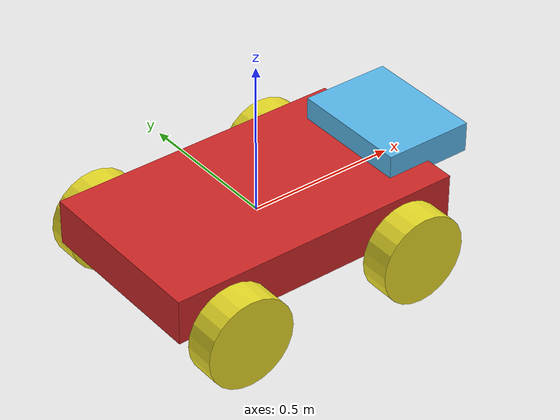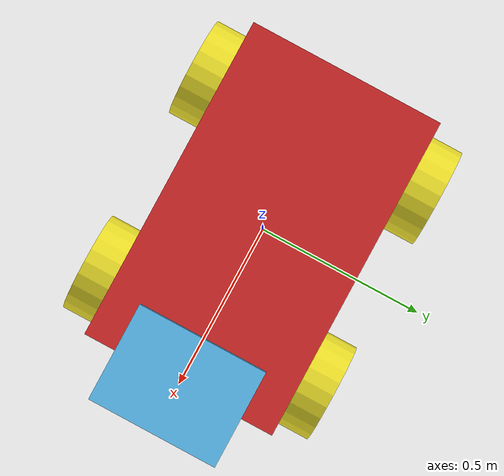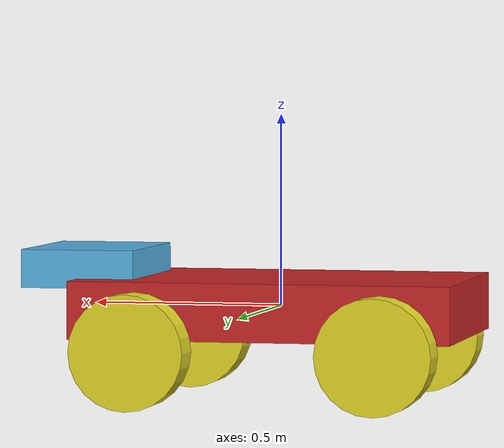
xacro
<?xml version="1.0"?>

<robot name="differential_drive_robot"
	xmlns:xacro="https://www.ros.org/wiki/xacro">

	<!-- base dimensions -->
	<xacro:property name="base_link_x_dim" value="1"/>
	<xacro:property name="base_link_y_dim" value="0.6"/>
	<xacro:property name="base_link_z_dim" value="0.3"/>

	<!-- Wheel dimensions -->
	<xacro:property name="wheel_link_radius" value="0.15"/>
	<xacro:property name="wheel_link_length" value="0.1"/>
	<xacro:property name="wheel_link_z_location" value="-0.1"/>

	<!-- Material density -->
	<xacro:property name="base_density" value="2710.0"/>
	<xacro:property name="wheel_density" value="2710.0"/>

	<!-- Pi constant -->
	<xacro:property name="pi_const" value="3.14159265"/>

	<!--Robot base and wheel mass -->
	<xacro:property name="base_mass" value="${base_density*base_link_x_dim*base_link_y_dim*base_link_z_dim}"/>
	<xacro:property name="wheel_mass" value="${wheel_density*pi_const*wheel_link_radius*wheel_link_radius*wheel_link_length}"/>

	<!-- Compute inertia terms -->
	<xacro:property name="ixx" value="${(1.0/12.0) * base_mass * (base_link_y_dim**2 + base_link_z_dim**2)}"/>
	<xacro:property name="iyy" value="${(1.0/12.0) * base_mass * (base_link_x_dim**2 + base_link_z_dim**2)}"/>
	<xacro:property name="izz" value="${(1.0/12.0) * base_mass * (base_link_x_dim**2 + base_link_y_dim**2)}"/>

	<!-- Moments of inertia of the wheel -->
	<xacro:property name="Iz_wheel" value="${0.5*wheel_mass*wheel_link_radius*wheel_link_radius}"/>
	<xacro:property name="I_wheel" value="${(1.0/12.0)*wheel_mass*(3.0*wheel_link_radius*wheel_link_radius+wheel_link_length*wheel_link_length)}" />

	<!-- This macro defines the complete inertial section of the wheel -->
	<xacro:macro name="inertia_wheel">
		<inertial>
			<origin rpy="0 0 0" xyz="0 0 0"/>
			<mass value="${wheel_mass}"/>
			<inertia ixx="${I_wheel}" ixy="0.0" ixz="0.0" iyy="${I_wheel}" iyz="0.0" izz="${Iz_wheel}"/>
		</inertial>
	</xacro:macro>

	<!-- we include the file that defines extra Gazebo options and motion control driver -->
	<xacro:include filename="$(find robot_model_pkg)/urdf/robot.gazebo" />

	<!-- Links and Joints -->

	<!--base link-->
	<link name="base_link">
		<visual>
			<geometry>
				<box size="${base_link_x_dim} ${base_link_y_dim} ${base_link_z_dim/2}" />
			</geometry>
			<origin rpy="0 0 0" xyz="0 0 0"/>
		</visual>

		<collision>
			<geometry>
				<box size="${base_link_x_dim} ${base_link_y_dim} ${base_link_z_dim}"/>
			</geometry>
			<origin rpy="0 0 0" xyz="0 0 0"/>
		</collision>

		<inertial>
			<origin rpy="0 0 0" xyz="0 0 0"/>
			<mass value="${base_mass}"/>
			<inertia ixx="${ixx}" ixy="0" ixz="0" iyy="${iyy}" iyz="0" izz="${izz}"/>
		</inertial>
	</link>

	<!-- Kinect Sensor joint -->
	<joint name="camera_joint" type="fixed">
		<parent link="base_link"/>
		<child link="camera_link"/>
		<origin xyz="${base_link_x_dim/2} 0 ${base_link_z_dim/3}" rpy="0 0 0"/>
	</joint>

	<link name="camera_link">
		<visual>
			<origin rpy="0 0 0" xyz="0 0 0"/>
			<geometry>
				<box size="0.3 0.4 0.1"/>
			</geometry>
		</visual>

		<collision>
			<geometry>
				<box size="0.3 0.4 0.1"/>
			</geometry>
			<origin rpy="0 0 0" xyz="0 0 0"/>
		</collision>
		<inertial>
			<mass value="0.8"/>
			<!-- Approximate weight of a Kinect -->
			<origin xyz="0 0 0" rpy="0 0 0"/>
			<inertia ixx="0.002" ixy="0.0" ixz="0.0" iyy="0.003" iyz="0.0" izz="0.001"/>
		</inertial>
	</link>

	<!-- Back Right wheel of the robot and the joint -->
	<joint name="wheel1_joint" type="continuous">
		<parent link="base_link"/>
		<child link="wheel1_link"/>
		<origin xyz="${-base_link_x_dim/2+1.2*wheel_link_radius} ${-base_link_y_dim/2-wheel_link_length/2} ${wheel_link_z_location}" rpy="0 0 0"/>
		<axis xyz="0 1 0"/>
		<limit effort="1000" velocity="1000"/>
		<dynamics damping="1.0" friction="1.0"/>
	</joint>

	<link name="wheel1_link">
		<visual>
			<origin rpy="1.570795 0 0" xyz="0 0 0"/>
			<geometry>
				<cylinder length="${wheel_link_length}" radius="${wheel_link_radius}"/>
			</geometry>
		</visual>

		<collision>
			<origin rpy="1.570795 0 0" xyz="0 0 0"/>
			<geometry>
				<cylinder length="${wheel_link_length}" radius="${wheel_link_radius}"/>
			</geometry>
		</collision>

		<xacro:inertia_wheel />
	</link>

	<!-- Back Left wheel -->

	<joint name="wheel2_joint" type="continuous">
		<parent link="base_link"/>
		<child link="wheel2_link"/>
		<origin xyz="${-base_link_x_dim/2+1.2*wheel_link_radius} ${base_link_y_dim/2+wheel_link_length/2} ${wheel_link_z_location}" rpy="0 0 0"/>
		<axis xyz="0 1 0"/>
		<limit effort="1000" velocity="1000"/>
		<dynamics damping="1.0" friction="1.0"/>
	</joint>

	<link name="wheel2_link">
		<visual>
			<origin rpy="1.570795 0 0" xyz="0 0 0"/>
			<geometry>
				<cylinder length="${wheel_link_length}" radius="${wheel_link_radius}"/>
			</geometry>
		</visual>

		<collision>
			<origin rpy="1.570795 0 0" xyz="0 0 0"/>
			<geometry>
				<cylinder length="${wheel_link_length}" radius="${wheel_link_radius}"/>
			</geometry>
		</collision>
		<xacro:inertia_wheel/>
	</link>

	<!-- Front Right Wheel -->

	<joint name="wheel3_joint" type="continuous">
		<parent link="base_link"/>
		<child link="wheel3_link"/>
		<origin xyz="${base_link_x_dim/2-1.2*wheel_link_radius} ${-base_link_y_dim/2-wheel_link_length/2} ${wheel_link_z_location}" rpy="0 0 0"/>
		<axis xyz="0 1 0"/>
		<limit effort="1000" velocity="1000"/>
		<dynamics damping="1.0" friction="1.0"/>
	</joint>

	<link name="wheel3_link">
		<visual>
			<origin rpy="1.570795 0 0" xyz="0 0 0"/>
			<geometry>
				<cylinder length="${wheel_link_length}" radius="${wheel_link_radius}"/>
			</geometry>
		</visual>
		<collision>
			<origin rpy="1.570795 0 0" xyz="0 0 0"/>
			<geometry>
				<cylinder length="${wheel_link_length}" radius="${wheel_link_radius}"/>
			</geometry>
		</collision>
		<xacro:inertia_wheel/>
	</link>

	<!--Front Left-->

	<joint name="wheel4_joint" type="continuous">
		<parent link="base_link"/>
		<child link="wheel4_link"/>
		<origin xyz="${base_link_x_dim/2-1.2*wheel_link_radius} ${base_link_y_dim/2+wheel_link_length/2} ${wheel_link_z_location}" rpy="0 0 0"/>
		<axis xyz="0 1 0"/>
		<limit effort="1000" velocity="1000"/>
		<dynamics damping="1.0" friction="1.0"/>
	</joint>

	<link name="wheel4_link">
		<visual>
			<origin rpy="1.570795 0 0" xyz="0 0 0"/>
			<geometry>
				<cylinder length="${wheel_link_length}" radius="${wheel_link_radius}"/>
			</geometry>
		</visual>

		<collision>
			<origin rpy="1.570795 0 0" xyz="0 0 0"/>
			<geometry>
				<cylinder length="${wheel_link_length}" radius="${wheel_link_radius}"/>
			</geometry>
		</collision>
		<xacro:inertia_wheel/>
	</link>

	<gazebo reference="camera_link">
		<sensor type="multicamera" name="stereo_camera">
			<update_rate>30.0</update_rate>
			<camera name="left">
				<horizontal_fov>1.3962634</horizontal_fov>
				<image>
					<width>800</width>
					<height>800</height>
					<format>R8G8B8</format>
				</image>
				<clip>
					<near>0.02</near>
					<far>300</far>
				</clip>
				<noise>
					<type>gaussian</type>
					<mean>0.0</mean>
					<stddev>0.007</stddev>
				</noise>
			</camera>
			<camera name="right">
				<pose>0 -0.07 0 0 0 0</pose>
				<horizontal_fov>1.3962634</horizontal_fov>
				<image>
					<width>800</width>
					<height>800</height>
					<format>R8G8B8</format>
				</image>
				<clip>
					<near>0.02</near>
					<far>300</far>
				</clip>
				<noise>
					<type>gaussian</type>
					<mean>0.0</mean>
					<stddev>0.007</stddev>
				</noise>
			</camera>
			<plugin name="stereo_camera_controller" filename="libgazebo_ros_multicamera.so">
				<alwaysOn>true</alwaysOn>
				<updateRate>30.0</updateRate>
				<cameraName>stereo_camera</cameraName>

				<imageTopicName>image_raw</imageTopicName>
				<cameraInfoTopicName>camera_info</cameraInfoTopicName>
				<frameName>camera_link</frameName>
				<odometryTopic>/stereo_camera/odom</odometryTopic>
				<rightImageTopicName>image_raw</rightImageTopicName>
				<rightCameraInfoTopicName>camera_info</rightCameraInfoTopicName>
				<rightFrameName>right_camera_optical_frame</rightFrameName>

				<hackBaseline>0.07</hackBaseline>
				<distortionK1>0.0</distortionK1>
				<distortionK2>0.0</distortionK2>
				<distortionK3>0.0</distortionK3>
				<distortionT1>0.0</distortionT1>
				<distortionT2>0.0</distortionT2>
			</plugin>
		</sensor>
	</gazebo>
	<!-- Controller for the 4-wheeled robot -->
	<gazebo>
		<plugin name="skid_steer_drive_controller" filename="libgazebo_ros_skid_steer_drive.so">
			<rosNamespace>/</rosNamespace>

			<!-- Joint names for each wheel -->
			<leftFrontJoint>wheel4_joint</leftFrontJoint>
			<leftRearJoint>wheel2_joint</leftRearJoint>
			<rightFrontJoint>wheel3_joint</rightFrontJoint>
			<rightRearJoint>wheel1_joint</rightRearJoint>

			<!-- Physical parameters -->
			<wheelSeparation>${base_link_y_dim + wheel_link_length}</wheelSeparation>			<!-- Lateral distance between left and right wheels -->
			<wheelDiameter>${2 * wheel_link_radius}</wheelDiameter>

			<!-- Control parameters -->
			<torque>100</torque>
			<updateRate>100</updateRate>

			<!-- Frame and topic settings -->
			<robotBaseFrame>base_link</robotBaseFrame>
			<commandTopic>cmd_vel</commandTopic>
			<odometryTopic>odom</odometryTopic>

			<!-- TF settings -->
			<broadcastTF>true</broadcastTF>
			<publishWheelTF>true</publishWheelTF>

			<!-- Optional: enable wheel velocity publishing -->
			<publishWheelJointState>true</publishWheelJointState>
			<legacyMode>false</legacyMode>			<!-- Use if you're not relying on deprecated behavior -->
		</plugin>
	</gazebo>

</robot>
